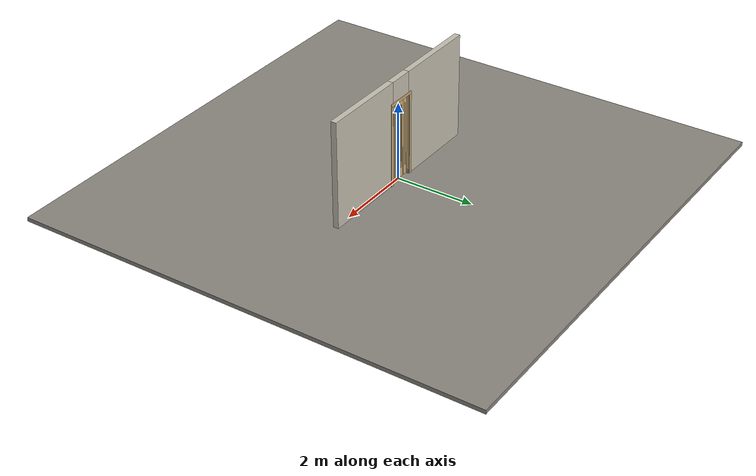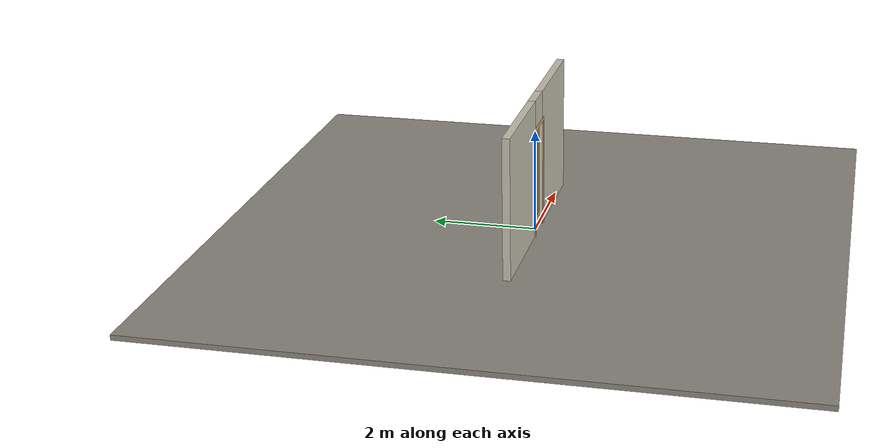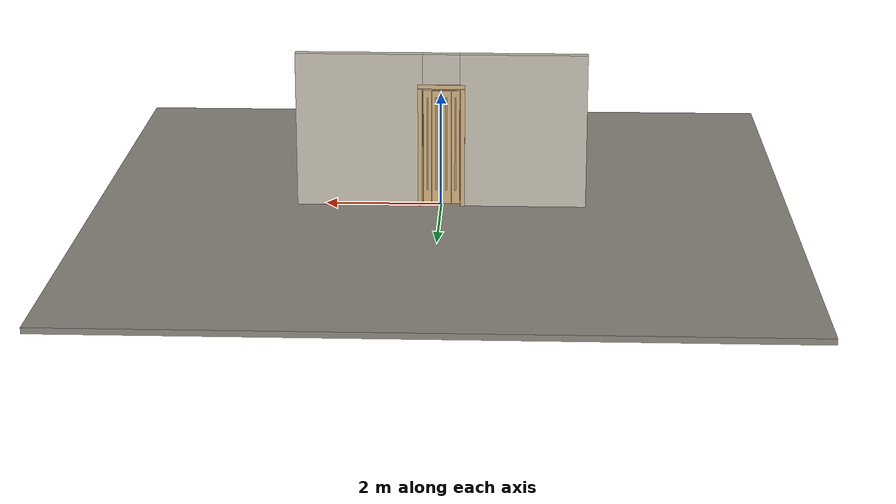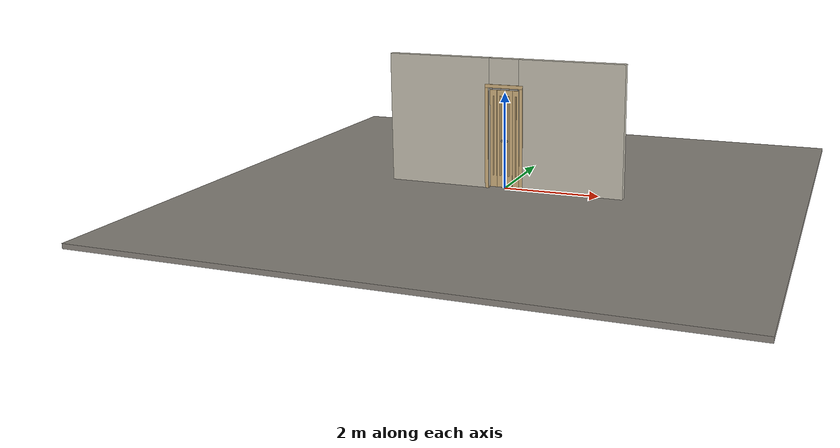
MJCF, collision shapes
<?xml version="1.0" ?>
<mujoco model="db0665_bifold_full">
  <compiler angle="radian" meshdir="../../hardware" texturedir="../../textures" autolimits="true" inertiafromgeom="false"/>
  <option timestep="0.002" integrator="implicitfast" cone="elliptic" impratio="10" noslip_iterations="3">
    <flag multiccd="enable"/>
  </option>
  <size memory="16M"/>
  <default>
    <geom condim="4" solref="0.005 1" solimp="0.95 0.99 0.001"/>
    <joint solreflimit="0.005 1" solimplimit="0.95 0.99 0.001"/>
    <tendon solreflimit="0.005 1"/>
    <equality solref="0.002 1"/>
  </default>
  <visual>
    <headlight ambient="0.4 0.4 0.4" diffuse="0.7 0.7 0.7" specular="0.2 0.2 0.2"/>
    <quality shadowsize="4096"/>
    <map znear="0.01" zfar="60"/>
  </visual>
  <asset>
    <mesh name="knob_13f7a2a65f" file="knob_13f7a2a65f.obj"/>
    <material name="mat_floor" rgba="0.55 0.53 0.5 1" specular="0.2" shininess="0.15" reflectance="0"/>
    <material name="mat_wall" rgba="0.78 0.76 0.7 1" specular="0.2" shininess="0.1" reflectance="0"/>
    <material name="mat_frame" rgba="0.82 0.7 0.5 1" specular="0.2" shininess="0.45" reflectance="0"/>
    <material name="mat_track" rgba="0.8 0.81 0.83 1" specular="0.8" shininess="0.6" reflectance="0.4"/>
    <material name="mat_hinge" rgba="0.65 0.66 0.68 1" specular="0.74" shininess="0.5" reflectance="0.36"/>
    <material name="mat_panel_0_0" rgba="0.82 0.7 0.5 1" specular="0.2" shininess="0.45" reflectance="0"/>
    <material name="mat_panel_0_0_panel" rgba="0.754 0.644 0.46 1" specular="0.2" shininess="0.45" reflectance="0"/>
    <material name="mat_panel_0_1" rgba="0.82 0.7 0.5 1" specular="0.2" shininess="0.45" reflectance="0"/>
    <material name="mat_panel_0_1_panel" rgba="0.754 0.644 0.46 1" specular="0.2" shininess="0.45" reflectance="0"/>
    <material name="mat_op_nickel_satin" rgba="0.72 0.7 0.66 1" specular="0.8" shininess="0.65" reflectance="0.4"/>
    <material name="mat_panel_1_0" rgba="0.82 0.7 0.5 1" specular="0.2" shininess="0.45" reflectance="0"/>
    <material name="mat_panel_1_0_panel" rgba="0.754 0.644 0.46 1" specular="0.2" shininess="0.45" reflectance="0"/>
    <material name="mat_panel_1_1" rgba="0.82 0.7 0.5 1" specular="0.2" shininess="0.45" reflectance="0"/>
    <material name="mat_panel_1_1_panel" rgba="0.754 0.644 0.46 1" specular="0.2" shininess="0.45" reflectance="0"/>
    <texture name="skybox" type="skybox" builtin="gradient" rgb1="0.6 0.7 0.85" rgb2="0.9 0.92 0.95" width="256" height="256"/>
  </asset>
  <worldbody>
    <light name="sun" pos="1.5 -2.5 4" dir="-0.3 0.5 -0.8" directional="true" diffuse="0.8 0.8 0.8" specular="0.3 0.3 0.3" castshadow="true"/>
    <light name="fill" pos="-1.5 2.5 3" dir="0.3 -0.5 -0.7" directional="true" diffuse="0.35 0.35 0.4" castshadow="false"/>
    <camera name="robot_view" pos="0 -2.581563 1.766338" xyaxes="1 0 0 0 0.26963 0.962964" fovy="52"/>
    <camera name="far_view" pos="0 2.581563 1.766338" xyaxes="-1 0 0 0 -0.26963 0.962964" fovy="52"/>
    <camera name="iso" pos="1.961988 -2.168513 2.179388" xyaxes="0.741536 0.670913 0 -0.242917 0.268487 0.932151" fovy="46"/>
    <camera name="detail_handle" pos="0.122925 -0.8475 1.28" xyaxes="0.97561 0.219512 0 -0.070934 0.315262 0.94635" fovy="38"/>
    <geom name="floor" type="box" size="6 6 0.05" pos="0 0 -0.05" material="mat_floor" group="0" contype="1" conaffinity="1" friction="0.8 0.005 0.0001" density="2400"/>
    <geom name="wall_left" type="box" size="1.09 0.0725 1.35" pos="-1.41 0 1.35" material="mat_wall" group="0" contype="1" conaffinity="1" friction="0.6 0.005 0.0001" density="800"/>
    <geom name="wall_right" type="box" size="1.09 0.0725 1.35" pos="1.41 0 1.35" material="mat_wall" group="0" contype="1" conaffinity="1" friction="0.6 0.005 0.0001" density="800"/>
    <geom name="wall_header" type="box" size="0.32 0.0725 0.3065" pos="0 0 2.3935" material="mat_wall" group="0" contype="1" conaffinity="1" friction="0.6 0.005 0.0001" density="800"/>
    <geom name="jamb_hinge" type="box" size="0.0095 0.0725 1.0435" pos="-0.3295 0 1.0435" material="mat_frame" group="0" contype="1" conaffinity="1" friction="0.6 0.005 0.0001" density="400"/>
    <geom name="jamb_strike" type="box" size="0.0095 0.0725 1.0435" pos="0.3295 0 1.0435" material="mat_frame" group="0" contype="1" conaffinity="1" friction="0.6 0.005 0.0001" density="400"/>
    <geom name="stud_strike" type="box" size="0.015 0.0725 1.0435" pos="0.354 0 1.0435" material="mat_wall" group="0" contype="1" conaffinity="1" friction="0.6 0.005 0.0001" density="500"/>
    <geom name="jamb_head" type="box" size="0.354 0.0725 0.0095" pos="0.015 0 2.0965" material="mat_frame" group="0" contype="1" conaffinity="1" friction="0.6 0.005 0.0001" density="400"/>
    <geom name="head_stud" type="box" size="0.354 0.0725 0.015" pos="0.015 0 2.121" material="mat_wall" group="0" contype="1" conaffinity="1" friction="0.6 0.005 0.0001" density="500"/>
    <geom name="casing_l_n" type="box" size="0.035 0.008 1.053" pos="-0.369 -0.0805 1.0435" material="mat_frame" group="2" contype="0" conaffinity="0" density="400"/>
    <geom name="casing_r_n" type="box" size="0.035 0.008 1.053" pos="0.369 -0.0805 1.0435" material="mat_frame" group="2" contype="0" conaffinity="0" density="400"/>
    <geom name="casing_h_n" type="box" size="0.404 0.008 0.035" pos="0 -0.0805 2.136" material="mat_frame" group="2" contype="0" conaffinity="0" density="400"/>
    <geom name="casing_l_p" type="box" size="0.035 0.008 1.053" pos="-0.369 0.0805 1.0435" material="mat_frame" group="2" contype="0" conaffinity="0" density="400"/>
    <geom name="casing_r_p" type="box" size="0.035 0.008 1.053" pos="0.369 0.0805 1.0435" material="mat_frame" group="2" contype="0" conaffinity="0" density="400"/>
    <geom name="casing_h_p" type="box" size="0.404 0.008 0.035" pos="0 0.0805 2.136" material="mat_frame" group="2" contype="0" conaffinity="0" density="400"/>
    <geom name="fold_track" type="box" size="0.32 0.02 0.015" pos="0 0 2.072" material="mat_track" group="1" contype="0" conaffinity="0" density="2700"/>
    <site name="approach_point" pos="0 -1.5 0" quat="1 0 0 0" size="0.05" rgba="0.2 0.9 0.2 0.5" group="4"/>
    <site name="goal_point" pos="0 1.5 0" quat="1 0 0 0" size="0.05" rgba="0.2 0.9 0.2 0.5" group="4"/>
    <site name="door_plane_center" pos="0 0 1.0435" quat="1 0 0 0" size="0.02" rgba="0.2 0.9 0.2 0.5" group="4"/>
    <body name="panel_0_0" pos="-0.32 0 0">
      <inertial pos="0.079017 0 1.043738" mass="4.07451" quat="0.500245 0.500245 0.499755 -0.499755" diaginertia="0.007199142 1.423464573 1.429836905"/>
      <joint name="panel_0_0_hinge" type="hinge" axis="0 0 -1" pos="0.035 0 0" limited="true" range="0 1.48353" damping="0.688782" frictionloss="1.118664" armature="0.02"/>
      <geom name="panel_0_0_slab" type="box" size="0.070645 0.0175 1.016" pos="0.079355 0 1.036" material="mat_panel_0_0" group="0" contype="1" conaffinity="1" friction="0.35 0.005 0.0001" density="1"/>
      <geom name="panel_0_0_panel_0_n" type="box" size="0.011084 0.003 0.83344" pos="0.079355 -0.0205 1.09696" material="mat_panel_0_0_panel" group="1" contype="0" conaffinity="0" density="1"/>
      <geom name="panel_0_0_panel_0_p" type="box" size="0.011084 0.003 0.83344" pos="0.079355 0.0205 1.09696" material="mat_panel_0_0_panel" group="1" contype="0" conaffinity="0" density="1"/>
      <geom name="panel_0_0_pivot_pin" type="cylinder" size="0.008 0.0105" pos="0.035 0 2.0525" material="mat_hinge" group="1" contype="0" conaffinity="0" density="7850"/>
      <body name="panel_0_1" pos="0.152 0 0">
        <inertial pos="0.01486 0.010565 1.031479" mass="4.688682" quat="0.596561 0.378646 -0.597174 0.379639" diaginertia="0.008323817 1.382601085 1.390652073"/>
        <joint name="panel_0_1_hinge" type="hinge" axis="0 0 -1" pos="0 0.0175 0" limited="true" range="-3.141593 0" damping="0.2" frictionloss="0.1" armature="0.005"/>
        <geom name="panel_0_1_slab" type="box" size="0.079462 0.0175 1.016" pos="0.081462 0 1.036" material="mat_panel_0_1" group="0" contype="1" conaffinity="1" friction="0.35 0.005 0.0001" density="1"/>
        <geom name="panel_0_1_panel_0_n" type="box" size="0.014963 0.003 0.83344" pos="0.081462 -0.0205 1.09696" material="mat_panel_0_1_panel" group="1" contype="0" conaffinity="0" density="1"/>
        <geom name="panel_0_1_panel_0_p" type="box" size="0.014963 0.003 0.83344" pos="0.081462 0.0205 1.09696" material="mat_panel_0_1_panel" group="1" contype="0" conaffinity="0" density="1"/>
        <geom name="panel_0_1_knuckle" type="cylinder" size="0.0045 1.006" pos="0 0.0175 1.036" material="mat_hinge" group="1" contype="0" conaffinity="0" density="7850"/>
        <geom name="panel_0_1_knob" type="mesh" mesh="knob_13f7a2a65f" pos="0.110925 -0.0175 1" quat="0.707107 0.707107 0 0" material="mat_op_nickel_satin" group="1" contype="0" conaffinity="0" density="3000"/>
        <geom name="panel_0_1_knob_col" type="sphere" size="0.016" pos="0.110925 -0.0475 1" material="mat_op_nickel_satin" group="0" contype="1" conaffinity="1" friction="0.6 0.005 0.0001" density="3000"/>
        <geom name="panel_0_1_knob_rose" type="cylinder" size="0.022 0.005" pos="0.110925 -0.0225 1" quat="0.707107 -0.707107 0 0" material="mat_op_nickel_satin" group="1" contype="0" conaffinity="0" density="3000"/>
        <site name="panel_0_1_grip" pos="0.110925 -0.0475 1" quat="1 0 0 0" size="0.012" rgba="0.2 0.9 0.2 0.5" group="4"/>
      </body>
    </body>
    <body name="panel_1_0" pos="0.32 0 0">
      <inertial pos="-0.079017 0 1.043738" mass="4.07451" quat="0.500245 -0.500245 -0.499755 -0.499755" diaginertia="0.007199142 1.423464573 1.429836905"/>
      <joint name="panel_1_0_hinge" type="hinge" axis="0 0 1" pos="-0.035 0 0" limited="true" range="0 1.48353" damping="0.688782" frictionloss="1.118664" armature="0.02"/>
      <geom name="panel_1_0_slab" type="box" size="0.070645 0.0175 1.016" pos="-0.079355 0 1.036" material="mat_panel_1_0" group="0" contype="1" conaffinity="1" friction="0.35 0.005 0.0001" density="1"/>
      <geom name="panel_1_0_panel_0_n" type="box" size="0.011084 0.003 0.83344" pos="-0.079355 -0.0205 1.09696" material="mat_panel_1_0_panel" group="1" contype="0" conaffinity="0" density="1"/>
      <geom name="panel_1_0_panel_0_p" type="box" size="0.011084 0.003 0.83344" pos="-0.079355 0.0205 1.09696" material="mat_panel_1_0_panel" group="1" contype="0" conaffinity="0" density="1"/>
      <geom name="panel_1_0_pivot_pin" type="cylinder" size="0.008 0.0105" pos="-0.035 0 2.0525" material="mat_hinge" group="1" contype="0" conaffinity="0" density="7850"/>
      <body name="panel_1_1" pos="-0.152 0 0">
        <inertial pos="-0.01486 0.010565 1.031479" mass="4.688682" quat="0.379639 0.597174 -0.378646 0.596561" diaginertia="0.008323817 1.382601085 1.390652073"/>
        <joint name="panel_1_1_hinge" type="hinge" axis="0 0 1" pos="0 0.0175 0" limited="true" range="-3.141593 0" damping="0.2" frictionloss="0.1" armature="0.005"/>
        <geom name="panel_1_1_slab" type="box" size="0.079462 0.0175 1.016" pos="-0.081462 0 1.036" material="mat_panel_1_1" group="0" contype="1" conaffinity="1" friction="0.35 0.005 0.0001" density="1"/>
        <geom name="panel_1_1_panel_0_n" type="box" size="0.014963 0.003 0.83344" pos="-0.081462 -0.0205 1.09696" material="mat_panel_1_1_panel" group="1" contype="0" conaffinity="0" density="1"/>
        <geom name="panel_1_1_panel_0_p" type="box" size="0.014963 0.003 0.83344" pos="-0.081462 0.0205 1.09696" material="mat_panel_1_1_panel" group="1" contype="0" conaffinity="0" density="1"/>
        <geom name="panel_1_1_knuckle" type="cylinder" size="0.0045 1.006" pos="0 0.0175 1.036" material="mat_hinge" group="1" contype="0" conaffinity="0" density="7850"/>
        <geom name="panel_1_1_knob" type="mesh" mesh="knob_13f7a2a65f" pos="-0.110925 -0.0175 1" quat="0 0 -0.707107 0.707107" material="mat_op_nickel_satin" group="1" contype="0" conaffinity="0" density="3000"/>
        <geom name="panel_1_1_knob_col" type="sphere" size="0.016" pos="-0.110925 -0.0475 1" material="mat_op_nickel_satin" group="0" contype="1" conaffinity="1" friction="0.6 0.005 0.0001" density="3000"/>
        <geom name="panel_1_1_knob_rose" type="cylinder" size="0.022 0.005" pos="-0.110925 -0.0225 1" quat="0.707107 -0.707107 0 0" material="mat_op_nickel_satin" group="1" contype="0" conaffinity="0" density="3000"/>
        <site name="panel_1_1_grip" pos="-0.110925 -0.0475 1" quat="1 0 0 0" size="0.012" rgba="0.2 0.9 0.2 0.5" group="4"/>
      </body>
    </body>
  </worldbody>
  <equality>
    <joint name="panel_0_1_couple" joint1="panel_0_1_hinge" joint2="panel_0_0_hinge" polycoef="0 -2 0 0 0" active="true"/>
    <joint name="panel_1_1_couple" joint1="panel_1_1_hinge" joint2="panel_1_0_hinge" polycoef="0 -2 0 0 0" active="true"/>
  </equality>
  <sensor>
    <jointpos name="panel_0_0_hinge_pos" joint="panel_0_0_hinge"/>
    <jointvel name="panel_0_0_hinge_vel" joint="panel_0_0_hinge"/>
    <jointpos name="panel_0_1_hinge_pos" joint="panel_0_1_hinge"/>
    <jointvel name="panel_0_1_hinge_vel" joint="panel_0_1_hinge"/>
    <jointpos name="panel_1_0_hinge_pos" joint="panel_1_0_hinge"/>
    <jointvel name="panel_1_0_hinge_vel" joint="panel_1_0_hinge"/>
    <jointpos name="panel_1_1_hinge_pos" joint="panel_1_1_hinge"/>
    <jointvel name="panel_1_1_hinge_vel" joint="panel_1_1_hinge"/>
  </sensor>
</mujoco>
